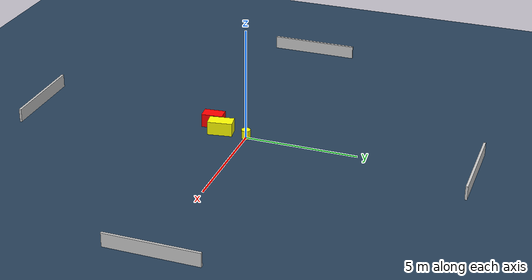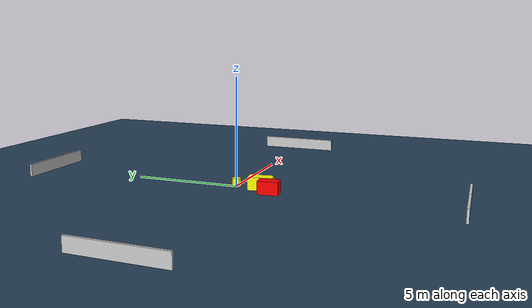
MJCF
<?xml version="1.0" ?>
<mujoco model="generated_environment">
  <option timestep="0.01" integrator="RK4" cone="elliptic"/>
  <default>
    <geom density="1"/>
  </default>
  <asset>
    <texture builtin="gradient" height="3072" name="skybox" rgb1="0.3 0.5 0.7" rgb2="0 0 0" type="skybox" width="512"/>
    <texture builtin="checker" height="300" name="groundplane" rgb1="0.2 0.3 0.4" rgb2="0.1 0.2 0.3" type="2d" width="300"/>
    <material name="groundplane" reflectance="0.2" texrepeat="5 5" texture="groundplane"/>
  </asset>
  <worldbody>
    <light dir="0 0 -1" directional="true" pos="0 0 1.5"/>
    <geom condim="3" friction="0.5 0.005 0.001" material="groundplane" name="floor" pos="0 0 0" size="0 0 0.05" type="plane"/>
    <body name="walls">
      <geom name="wall_1" condim="4" pos="-10.0 0.0 0.3" rgba="0.800000011920929 0.800000011920929 0.800000011920929 1.0" size="0.05 2.0 0.3" type="box"/>
      <geom name="wall_2" condim="4" pos="10.0 0.0 0.3" rgba="0.800000011920929 0.800000011920929 0.800000011920929 1.0" size="0.05 2.0 0.3" type="box"/>
      <geom name="wall_3" condim="4" pos="0.0 -10.0 0.3" rgba="0.800000011920929 0.800000011920929 0.800000011920929 1.0" size="2.0 0.05 0.3" type="box"/>
      <geom name="wall_4" condim="4" pos="0.0 10.0 0.3" rgba="0.800000011920929 0.800000011920929 0.800000011920929 1.0" size="2.0 0.05 0.3" type="box"/>
    </body>
    <body name="robot">
      <joint name="joint_x" type="slide" pos="0 0 0" axis="1 0 0"/>
      <joint name="joint_y" type="slide" pos="0 0 0" axis="0 1 0"/>
      <geom name="robot" type="cylinder" pos="0.0 0.0 0.2" size="0.2 0.2 0.0" mass="5.0" friction="1.0 0.005 0.0001" condim="4" rgba="1.0 1.0 0.0 1.0"/>
    </body>
    <body name="obstacle_1_movable">
      <geom name="obstacle_1_movable" condim="4" pos="-0.10462117469195743 -1.206571728981029 0.3" euler="0 0 8.726988603422896" friction="0.0 0.005 0.001" rgba="1.0 1.0 0.0 1.0" size="0.29884853221479973 0.5477931506156906 0.3" type="box" mass="0.1"/>
      <joint type="free"/>
    </body>
    <body name="obstacle_2_static">
      <geom name="obstacle_2_static" condim="4" pos="-0.6760673439126922 -1.7831570121927527 0.3" euler="0 0 5.268065595369236" friction="0.0 0.005 0.001" rgba="1.0 0.0 0.0 1.0" size="0.2911570225492591 0.4672659685032455 0.3" type="box"/>
    </body>
  </worldbody>
  <actuator>
    <motor name="actuator_x" joint="joint_x" gear="1" ctrlrange="-1 1"/>
    <motor name="actuator_y" joint="joint_y" gear="1" ctrlrange="-1 1"/>
  </actuator>
</mujoco>
